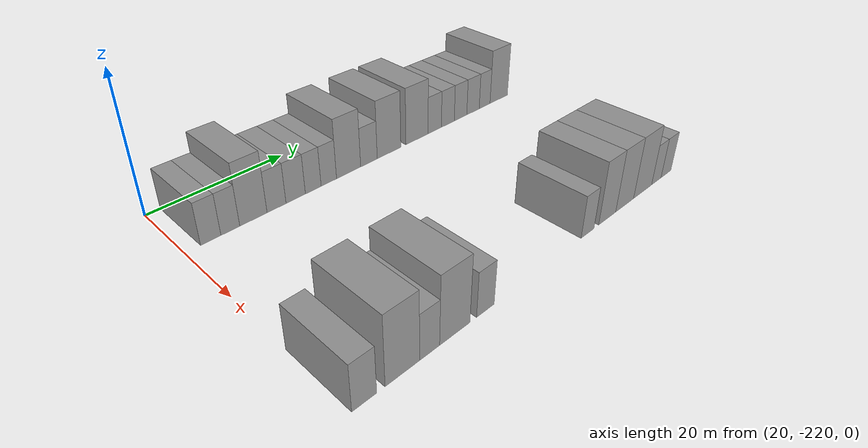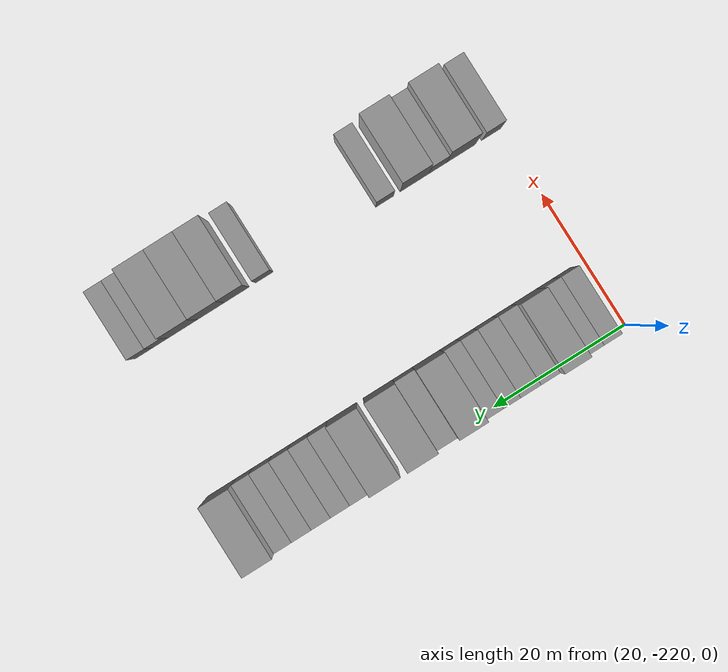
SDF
<sdf version="1.6">
 <world name="default">
  <model name="building_1">
   <static>1</static>
   <pose>25.0000 -216.6692 0 0.000000 0.000000 0.000000</pose>
   <link name="link">
    <pose>0 0 3.00 0 0 0</pose>
    <collision name="collision"><geometry><box><size>10.0000 2.6616 6.0000</size></box></geometry></collision>
    <visual name="visual">
     <cast_shadows>0</cast_shadows>
     <geometry><box><size>10.0000 2.6616 6.0000</size></box></geometry>
     <material>
      <script>
       <uri>model://grey_wall/materials/scripts</uri>
       <uri>model://grey_wall/materials/textures</uri>
       <name>vrc/grey_wall</name>
      </script>
     </material>
    </visual>
   </link>
  </model>
  <model name="building_2">
   <static>1</static>
   <pose>25.0000 -214.0633 0 0.000000 0.000000 0.000000</pose>
   <link name="link">
    <pose>0 0 3.00 0 0 0</pose>
    <collision name="collision"><geometry><box><size>10.0000 2.5503 6.0000</size></box></geometry></collision>
    <visual name="visual">
     <cast_shadows>0</cast_shadows>
     <geometry><box><size>10.0000 2.5503 6.0000</size></box></geometry>
     <material>
      <script>
       <uri>model://grey_wall/materials/scripts</uri>
       <uri>model://grey_wall/materials/textures</uri>
       <name>vrc/grey_wall</name>
      </script>
     </material>
    </visual>
   </link>
  </model>
  <model name="building_3">
   <static>1</static>
   <pose>25.0000 -210.8497 0 0.000000 0.000000 0.000000</pose>
   <link name="link">
    <pose>0 0 4.50 0 0 0</pose>
    <collision name="collision"><geometry><box><size>10.0000 3.8767 9.0000</size></box></geometry></collision>
    <visual name="visual">
     <cast_shadows>0</cast_shadows>
     <geometry><box><size>10.0000 3.8767 9.0000</size></box></geometry>
     <material>
      <script>
       <uri>model://grey_wall/materials/scripts</uri>
       <uri>model://grey_wall/materials/textures</uri>
       <name>vrc/grey_wall</name>
      </script>
     </material>
    </visual>
   </link>
  </model>
  <model name="building_4">
   <static>1</static>
   <pose>25.0000 -207.5015 0 0.000000 0.000000 0.000000</pose>
   <link name="link">
    <pose>0 0 3.00 0 0 0</pose>
    <collision name="collision"><geometry><box><size>10.0000 2.8198 6.0000</size></box></geometry></collision>
    <visual name="visual">
     <cast_shadows>0</cast_shadows>
     <geometry><box><size>10.0000 2.8198 6.0000</size></box></geometry>
     <material>
      <script>
       <uri>model://grey_wall/materials/scripts</uri>
       <uri>model://grey_wall/materials/textures</uri>
       <name>vrc/grey_wall</name>
      </script>
     </material>
    </visual>
   </link>
  </model>
  <model name="building_5">
   <static>1</static>
   <pose>25.0000 -204.5973 0 0.000000 0.000000 0.000000</pose>
   <link name="link">
    <pose>0 0 3.00 0 0 0</pose>
    <collision name="collision"><geometry><box><size>10.0000 2.9886 6.0000</size></box></geometry></collision>
    <visual name="visual">
     <cast_shadows>0</cast_shadows>
     <geometry><box><size>10.0000 2.9886 6.0000</size></box></geometry>
     <material>
      <script>
       <uri>model://grey_wall/materials/scripts</uri>
       <uri>model://grey_wall/materials/textures</uri>
       <name>vrc/grey_wall</name>
      </script>
     </material>
    </visual>
   </link>
  </model>
  <model name="building_6">
   <static>1</static>
   <pose>25.0000 -201.8396 0 0.000000 0.000000 0.000000</pose>
   <link name="link">
    <pose>0 0 3.00 0 0 0</pose>
    <collision name="collision"><geometry><box><size>10.0000 2.5268 6.0000</size></box></geometry></collision>
    <visual name="visual">
     <cast_shadows>0</cast_shadows>
     <geometry><box><size>10.0000 2.5268 6.0000</size></box></geometry>
     <material>
      <script>
       <uri>model://grey_wall/materials/scripts</uri>
       <uri>model://grey_wall/materials/textures</uri>
       <name>vrc/grey_wall</name>
      </script>
     </material>
    </visual>
   </link>
  </model>
  <model name="building_7">
   <static>1</static>
   <pose>25.0000 -199.2995 0 0.000000 0.000000 0.000000</pose>
   <link name="link">
    <pose>0 0 3.00 0 0 0</pose>
    <collision name="collision"><geometry><box><size>10.0000 2.5535 6.0000</size></box></geometry></collision>
    <visual name="visual">
     <cast_shadows>0</cast_shadows>
     <geometry><box><size>10.0000 2.5535 6.0000</size></box></geometry>
     <material>
      <script>
       <uri>model://grey_wall/materials/scripts</uri>
       <uri>model://grey_wall/materials/textures</uri>
       <name>vrc/grey_wall</name>
      </script>
     </material>
    </visual>
   </link>
  </model>
  <model name="building_8">
   <static>1</static>
   <pose>25.0000 -195.9334 0 0.000000 0.000000 0.000000</pose>
   <link name="link">
    <pose>0 0 4.50 0 0 0</pose>
    <collision name="collision"><geometry><box><size>10.0000 4.1788 9.0000</size></box></geometry></collision>
    <visual name="visual">
     <cast_shadows>0</cast_shadows>
     <geometry><box><size>10.0000 4.1788 9.0000</size></box></geometry>
     <material>
      <script>
       <uri>model://grey_wall/materials/scripts</uri>
       <uri>model://grey_wall/materials/textures</uri>
       <name>vrc/grey_wall</name>
      </script>
     </material>
    </visual>
   </link>
  </model>
  <model name="building_9">
   <static>1</static>
   <pose>25.0000 -192.3451 0 0.000000 0.000000 0.000000</pose>
   <link name="link">
    <pose>0 0 3.00 0 0 0</pose>
    <collision name="collision"><geometry><box><size>10.0000 2.9979 6.0000</size></box></geometry></collision>
    <visual name="visual">
     <cast_shadows>0</cast_shadows>
     <geometry><box><size>10.0000 2.9979 6.0000</size></box></geometry>
     <material>
      <script>
       <uri>model://grey_wall/materials/scripts</uri>
       <uri>model://grey_wall/materials/textures</uri>
       <name>vrc/grey_wall</name>
      </script>
     </material>
    </visual>
   </link>
  </model>
  <model name="building_10">
   <static>1</static>
   <pose>25.0000 -188.6095 0 0.000000 0.000000 0.000000</pose>
   <link name="link">
    <pose>0 0 4.50 0 0 0</pose>
    <collision name="collision"><geometry><box><size>10.0000 4.4733 9.0000</size></box></geometry></collision>
    <visual name="visual">
     <cast_shadows>0</cast_shadows>
     <geometry><box><size>10.0000 4.4733 9.0000</size></box></geometry>
     <material>
      <script>
       <uri>model://grey_wall/materials/scripts</uri>
       <uri>model://grey_wall/materials/textures</uri>
       <name>vrc/grey_wall</name>
      </script>
     </material>
    </visual>
   </link>
  </model>
  <model name="building_11">
   <static>1</static>
   <pose>25.0000 -183.1339 0 0.000000 0.000000 0.000000</pose>
   <link name="link">
    <pose>0 0 4.50 0 0 0</pose>
    <collision name="collision"><geometry><box><size>10.0000 4.4779 9.0000</size></box></geometry></collision>
    <visual name="visual">
     <cast_shadows>0</cast_shadows>
     <geometry><box><size>10.0000 4.4779 9.0000</size></box></geometry>
     <material>
      <script>
       <uri>model://grey_wall/materials/scripts</uri>
       <uri>model://grey_wall/materials/textures</uri>
       <name>vrc/grey_wall</name>
      </script>
     </material>
    </visual>
   </link>
  </model>
  <model name="building_12">
   <static>1</static>
   <pose>25.0000 -179.4846 0 0.000000 0.000000 0.000000</pose>
   <link name="link">
    <pose>0 0 3.00 0 0 0</pose>
    <collision name="collision"><geometry><box><size>10.0000 2.8207 6.0000</size></box></geometry></collision>
    <visual name="visual">
     <cast_shadows>0</cast_shadows>
     <geometry><box><size>10.0000 2.8207 6.0000</size></box></geometry>
     <material>
      <script>
       <uri>model://grey_wall/materials/scripts</uri>
       <uri>model://grey_wall/materials/textures</uri>
       <name>vrc/grey_wall</name>
      </script>
     </material>
    </visual>
   </link>
  </model>
  <model name="building_13">
   <static>1</static>
   <pose>25.0000 -176.6649 0 0.000000 0.000000 0.000000</pose>
   <link name="link">
    <pose>0 0 3.00 0 0 0</pose>
    <collision name="collision"><geometry><box><size>10.0000 2.8188 6.0000</size></box></geometry></collision>
    <visual name="visual">
     <cast_shadows>0</cast_shadows>
     <geometry><box><size>10.0000 2.8188 6.0000</size></box></geometry>
     <material>
      <script>
       <uri>model://grey_wall/materials/scripts</uri>
       <uri>model://grey_wall/materials/textures</uri>
       <name>vrc/grey_wall</name>
      </script>
     </material>
    </visual>
   </link>
  </model>
  <model name="building_14">
   <static>1</static>
   <pose>25.0000 -173.8461 0 0.000000 0.000000 0.000000</pose>
   <link name="link">
    <pose>0 0 3.00 0 0 0</pose>
    <collision name="collision"><geometry><box><size>10.0000 2.8188 6.0000</size></box></geometry></collision>
    <visual name="visual">
     <cast_shadows>0</cast_shadows>
     <geometry><box><size>10.0000 2.8188 6.0000</size></box></geometry>
     <material>
      <script>
       <uri>model://grey_wall/materials/scripts</uri>
       <uri>model://grey_wall/materials/textures</uri>
       <name>vrc/grey_wall</name>
      </script>
     </material>
    </visual>
   </link>
  </model>
  <model name="building_15">
   <static>1</static>
   <pose>25.0000 -170.9920 0 0.000000 0.000000 0.000000</pose>
   <link name="link">
    <pose>0 0 3.00 0 0 0</pose>
    <collision name="collision"><geometry><box><size>10.0000 2.8892 6.0000</size></box></geometry></collision>
    <visual name="visual">
     <cast_shadows>0</cast_shadows>
     <geometry><box><size>10.0000 2.8892 6.0000</size></box></geometry>
     <material>
      <script>
       <uri>model://grey_wall/materials/scripts</uri>
       <uri>model://grey_wall/materials/textures</uri>
       <name>vrc/grey_wall</name>
      </script>
     </material>
    </visual>
   </link>
  </model>
  <model name="building_16">
   <static>1</static>
   <pose>25.0000 -168.2565 0 0.000000 0.000000 0.000000</pose>
   <link name="link">
    <pose>0 0 3.00 0 0 0</pose>
    <collision name="collision"><geometry><box><size>10.0000 2.5820 6.0000</size></box></geometry></collision>
    <visual name="visual">
     <cast_shadows>0</cast_shadows>
     <geometry><box><size>10.0000 2.5820 6.0000</size></box></geometry>
     <material>
      <script>
       <uri>model://grey_wall/materials/scripts</uri>
       <uri>model://grey_wall/materials/textures</uri>
       <name>vrc/grey_wall</name>
      </script>
     </material>
    </visual>
   </link>
  </model>
  <model name="building_17">
   <static>1</static>
   <pose>25.0000 -164.8124 0 0.000000 0.000000 0.000000</pose>
   <link name="link">
    <pose>0 0 4.50 0 0 0</pose>
    <collision name="collision"><geometry><box><size>10.0000 4.3063 9.0000</size></box></geometry></collision>
    <visual name="visual">
     <cast_shadows>0</cast_shadows>
     <geometry><box><size>10.0000 4.3063 9.0000</size></box></geometry>
     <material>
      <script>
       <uri>model://grey_wall/materials/scripts</uri>
       <uri>model://grey_wall/materials/textures</uri>
       <name>vrc/grey_wall</name>
      </script>
     </material>
    </visual>
   </link>
  </model>
  <model name="building_118">
   <static>1</static>
   <pose>55.0000 -218.5407 0 0.000000 0.000000 0.000000</pose>
   <link name="link">
    <pose>0 0 3.00 0 0 0</pose>
    <collision name="collision"><geometry><box><size>10.0000 2.9187 6.0000</size></box></geometry></collision>
    <visual name="visual">
     <cast_shadows>0</cast_shadows>
     <geometry><box><size>10.0000 2.9187 6.0000</size></box></geometry>
     <material>
      <script>
       <uri>model://grey_wall/materials/scripts</uri>
       <uri>model://grey_wall/materials/textures</uri>
       <name>vrc/grey_wall</name>
      </script>
     </material>
    </visual>
   </link>
  </model>
  <model name="building_119">
   <static>1</static>
   <pose>55.0000 -213.8973 0 0.000000 0.000000 0.000000</pose>
   <link name="link">
    <pose>0 0 4.50 0 0 0</pose>
    <collision name="collision"><geometry><box><size>10.0000 4.3681 9.0000</size></box></geometry></collision>
    <visual name="visual">
     <cast_shadows>0</cast_shadows>
     <geometry><box><size>10.0000 4.3681 9.0000</size></box></geometry>
     <material>
      <script>
       <uri>model://grey_wall/materials/scripts</uri>
       <uri>model://grey_wall/materials/textures</uri>
       <name>vrc/grey_wall</name>
      </script>
     </material>
    </visual>
   </link>
  </model>
  <model name="building_120">
   <static>1</static>
   <pose>55.0000 -210.3514 0 0.000000 0.000000 0.000000</pose>
   <link name="link">
    <pose>0 0 3.00 0 0 0</pose>
    <collision name="collision"><geometry><box><size>10.0000 2.7237 6.0000</size></box></geometry></collision>
    <visual name="visual">
     <cast_shadows>0</cast_shadows>
     <geometry><box><size>10.0000 2.7237 6.0000</size></box></geometry>
     <material>
      <script>
       <uri>model://grey_wall/materials/scripts</uri>
       <uri>model://grey_wall/materials/textures</uri>
       <name>vrc/grey_wall</name>
      </script>
     </material>
    </visual>
   </link>
  </model>
  <model name="building_121">
   <static>1</static>
   <pose>55.0000 -206.8050 0 0.000000 0.000000 0.000000</pose>
   <link name="link">
    <pose>0 0 4.50 0 0 0</pose>
    <collision name="collision"><geometry><box><size>10.0000 4.3690 9.0000</size></box></geometry></collision>
    <visual name="visual">
     <cast_shadows>0</cast_shadows>
     <geometry><box><size>10.0000 4.3690 9.0000</size></box></geometry>
     <material>
      <script>
       <uri>model://grey_wall/materials/scripts</uri>
       <uri>model://grey_wall/materials/textures</uri>
       <name>vrc/grey_wall</name>
      </script>
     </material>
    </visual>
   </link>
  </model>
  <model name="building_122">
   <static>1</static>
   <pose>55.0000 -202.2596 0 0.000000 0.000000 0.000000</pose>
   <link name="link">
    <pose>0 0 3.00 0 0 0</pose>
    <collision name="collision"><geometry><box><size>10.0000 2.7219 6.0000</size></box></geometry></collision>
    <visual name="visual">
     <cast_shadows>0</cast_shadows>
     <geometry><box><size>10.0000 2.7219 6.0000</size></box></geometry>
     <material>
      <script>
       <uri>model://grey_wall/materials/scripts</uri>
       <uri>model://grey_wall/materials/textures</uri>
       <name>vrc/grey_wall</name>
      </script>
     </material>
    </visual>
   </link>
  </model>
  <model name="building_123">
   <static>1</static>
   <pose>55.0000 -183.9188 0 0.000000 0.000000 0.000000</pose>
   <link name="link">
    <pose>0 0 3.00 0 0 0</pose>
    <collision name="collision"><geometry><box><size>10.0000 2.6532 6.0000</size></box></geometry></collision>
    <visual name="visual">
     <cast_shadows>0</cast_shadows>
     <geometry><box><size>10.0000 2.6532 6.0000</size></box></geometry>
     <material>
      <script>
       <uri>model://grey_wall/materials/scripts</uri>
       <uri>model://grey_wall/materials/textures</uri>
       <name>vrc/grey_wall</name>
      </script>
     </material>
    </visual>
   </link>
  </model>
  <model name="building_124">
   <static>1</static>
   <pose>55.0000 -179.7242 0 0.000000 0.000000 0.000000</pose>
   <link name="link">
    <pose>0 0 4.50 0 0 0</pose>
    <collision name="collision"><geometry><box><size>10.0000 3.7359 9.0000</size></box></geometry></collision>
    <visual name="visual">
     <cast_shadows>0</cast_shadows>
     <geometry><box><size>10.0000 3.7359 9.0000</size></box></geometry>
     <material>
      <script>
       <uri>model://grey_wall/materials/scripts</uri>
       <uri>model://grey_wall/materials/textures</uri>
       <name>vrc/grey_wall</name>
      </script>
     </material>
    </visual>
   </link>
  </model>
  <model name="building_125">
   <static>1</static>
   <pose>55.0000 -175.7832 0 0.000000 0.000000 0.000000</pose>
   <link name="link">
    <pose>0 0 4.50 0 0 0</pose>
    <collision name="collision"><geometry><box><size>10.0000 4.1460 9.0000</size></box></geometry></collision>
    <visual name="visual">
     <cast_shadows>0</cast_shadows>
     <geometry><box><size>10.0000 4.1460 9.0000</size></box></geometry>
     <material>
      <script>
       <uri>model://grey_wall/materials/scripts</uri>
       <uri>model://grey_wall/materials/textures</uri>
       <name>vrc/grey_wall</name>
      </script>
     </material>
    </visual>
   </link>
  </model>
  <model name="building_126">
   <static>1</static>
   <pose>55.0000 -171.4972 0 0.000000 0.000000 0.000000</pose>
   <link name="link">
    <pose>0 0 4.50 0 0 0</pose>
    <collision name="collision"><geometry><box><size>10.0000 4.4260 9.0000</size></box></geometry></collision>
    <visual name="visual">
     <cast_shadows>0</cast_shadows>
     <geometry><box><size>10.0000 4.4260 9.0000</size></box></geometry>
     <material>
      <script>
       <uri>model://grey_wall/materials/scripts</uri>
       <uri>model://grey_wall/materials/textures</uri>
       <name>vrc/grey_wall</name>
      </script>
     </material>
    </visual>
   </link>
  </model>
  <model name="building_127">
   <static>1</static>
   <pose>55.0000 -168.0741 0 0.000000 0.000000 0.000000</pose>
   <link name="link">
    <pose>0 0 3.00 0 0 0</pose>
    <collision name="collision"><geometry><box><size>10.0000 2.4201 6.0000</size></box></geometry></collision>
    <visual name="visual">
     <cast_shadows>0</cast_shadows>
     <geometry><box><size>10.0000 2.4201 6.0000</size></box></geometry>
     <material>
      <script>
       <uri>model://grey_wall/materials/scripts</uri>
       <uri>model://grey_wall/materials/textures</uri>
       <name>vrc/grey_wall</name>
      </script>
     </material>
    </visual>
   </link>
  </model>
  <model name="building_128">
   <static>1</static>
   <pose>55.0000 -165.5595 0 0.000000 0.000000 0.000000</pose>
   <link name="link">
    <pose>0 0 3.00 0 0 0</pose>
    <collision name="collision"><geometry><box><size>10.0000 2.6090 6.0000</size></box></geometry></collision>
    <visual name="visual">
     <cast_shadows>0</cast_shadows>
     <geometry><box><size>10.0000 2.6090 6.0000</size></box></geometry>
     <material>
      <script>
       <uri>model://grey_wall/materials/scripts</uri>
       <uri>model://grey_wall/materials/textures</uri>
       <name>vrc/grey_wall</name>
      </script>
     </material>
    </visual>
   </link>
  </model>
 </world>
</sdf>
